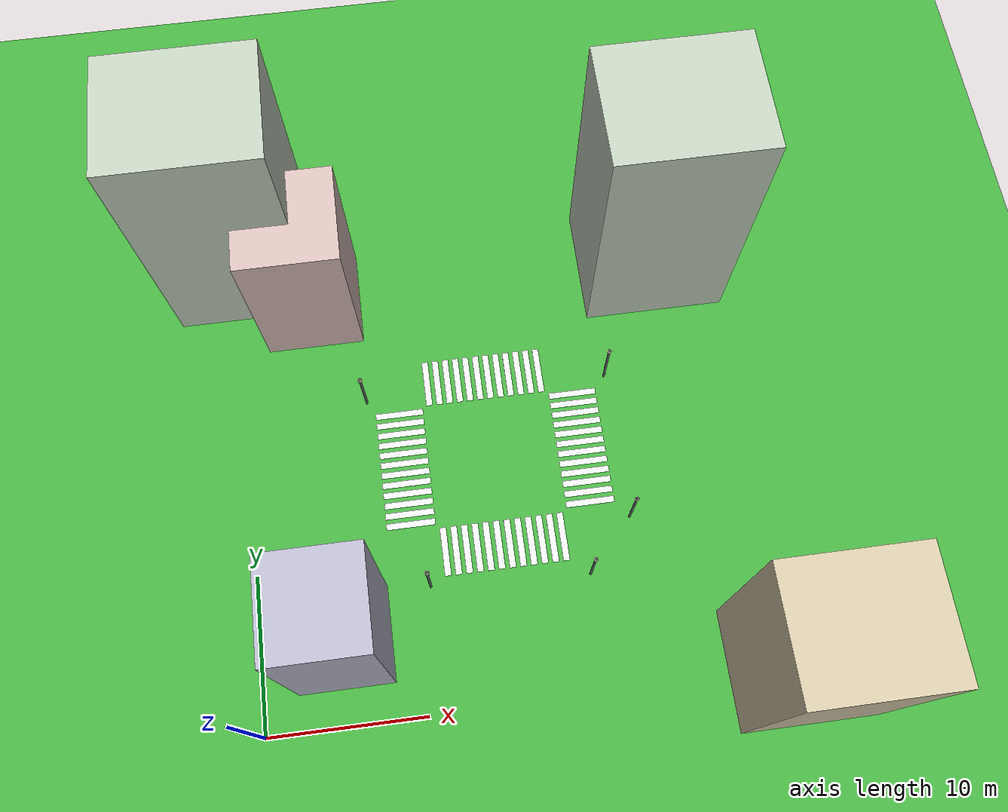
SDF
<sdf version="1.10">
 <world name="city_second">
  <model name="ground_plane">
   <static>true</static>
   <link name="link">
    <collision name="collision">
     <geometry><plane><normal>0 0 1</normal><size>300 300</size></plane></geometry>
    </collision>
    <visual name="visual">
     <geometry><plane><normal>0 0 1</normal><size>300 300</size></plane></geometry>
     <material>
      <ambient>0.280000001 0.689999998 0.25999999 1</ambient>
      <diffuse>0.280000001 0.689999998 0.25999999 1</diffuse>
      <specular>0.0299999993 0.0299999993 0.0299999993 1</specular>
     </material>
    </visual>
    <inertial>
     <mass>1</mass>
     <inertia><ixx>1</ixx><ixy>0</ixy><ixz>0</ixz><iyy>1</iyy><iyz>0</iyz><izz>1</izz></inertia>
    </inertial>
   </link>
  </model>
  <model name="house_2_2">
   <static>true</static>
   <pose>5.2000000000000002 5.2999999999999998 6.5 0 0 0</pose>
   <link name="link">
    <collision name="collision"><geometry><box><size>6 6 13</size></box></geometry></collision>
    <visual name="visual">
     <geometry><box><size>6 6 13</size></box></geometry>
     <material>
      <ambient>0.720000029 0.720000029 0.800000012 1</ambient>
      <diffuse>0.720000029 0.720000029 0.800000012 1</diffuse>
      <specular>0.0299999993 0.0299999993 0.0299999993 1</specular>
     </material>
    </visual>
    <inertial>
     <mass>1</mass>
     <inertia><ixx>1</ixx><ixy>0</ixy><ixz>0</ixz><iyy>1</iyy><iyz>0</iyz><izz>1</izz></inertia>
    </inertial>
   </link>
  </model>
  <model name="house_3_2">
   <static>true</static>
   <pose>4.8999999999999995 28.899999999999999 6 0 0 0</pose>
   <link name="link">
    <collision name="collision"><geometry><box><size>6.5 6.5 12</size></box></geometry></collision>
    <visual name="visual">
     <geometry><box><size>6.5 6.5 12</size></box></geometry>
     <material>
      <ambient>0.839999974 0.74000001 0.720000029 1</ambient>
      <diffuse>0.839999974 0.74000001 0.720000029 1</diffuse>
      <specular>0.0299999993 0.0299999993 0.0299999993 1</specular>
     </material>
    </visual>
    <inertial>
     <mass>1</mass>
     <inertia><ixx>1</ixx><ixy>0</ixy><ixz>0</ixz><iyy>1</iyy><iyz>0</iyz><izz>1</izz></inertia>
    </inertial>
   </link>
  </model>
  <model name="house_3_3">
   <static>true</static>
   <pose>28.600000000000001 29.399999999999999 9.5 0 0 0</pose>
   <link name="link">
    <collision name="collision"><geometry><box><size>9.5 8 19</size></box></geometry></collision>
    <visual name="visual">
     <geometry><box><size>9.5 8 19</size></box></geometry>
     <material>
      <ambient>0.75999999 0.810000002 0.74000001 1</ambient>
      <diffuse>0.75999999 0.810000002 0.74000001 1</diffuse>
      <specular>0.0299999993 0.0299999993 0.0299999993 1</specular>
     </material>
    </visual>
    <inertial>
     <mass>1</mass>
     <inertia><ixx>1</ixx><ixy>0</ixy><ixz>0</ixz><iyy>1</iyy><iyz>0</iyz><izz>1</izz></inertia>
    </inertial>
   </link>
  </model>
  <model name="crosswalk_h_1_1_south_5">
   <static>true</static>
   <pose>16.033462122134051 21.865937656898115 0.017000000923871994 0 0 0</pose>
   <link name="stripe_1">
    <collision name="collision">
     <geometry><box><size>0.41999999999999998 3.2000000000000002 0.01</size></box></geometry>
    </collision>
    <visual name="visual">
     <geometry><box><size>0.41999999999999998 3.2000000000000002 0.01</size></box></geometry>
     <material>
      <ambient>0.920000017 0.920000017 0.930000007 1</ambient>
      <diffuse>0.920000017 0.920000017 0.930000007 1</diffuse>
      <specular>0.0299999993 0.0299999993 0.0299999993 1</specular>
     </material>
    </visual>
    <pose>-3.8500000000000001 0 0 0 0 0</pose>
    <inertial>
     <mass>1</mass>
     <inertia><ixx>1</ixx><ixy>0</ixy><ixz>0</ixz><iyy>1</iyy><iyz>0</iyz><izz>1</izz></inertia>
    </inertial>
   </link>
   <link name="stripe_2">
    <collision name="collision">
     <geometry><box><size>0.41999999999999998 3.2000000000000002 0.01</size></box></geometry>
    </collision>
    <visual name="visual">
     <geometry><box><size>0.41999999999999998 3.2000000000000002 0.01</size></box></geometry>
     <material>
      <ambient>0.920000017 0.920000017 0.930000007 1</ambient>
      <diffuse>0.920000017 0.920000017 0.930000007 1</diffuse>
      <specular>0.0299999993 0.0299999993 0.0299999993 1</specular>
     </material>
    </visual>
    <pose>-3.1500000000000004 0 0 0 0 0</pose>
    <inertial>
     <mass>1</mass>
     <inertia><ixx>1</ixx><ixy>0</ixy><ixz>0</ixz><iyy>1</iyy><iyz>0</iyz><izz>1</izz></inertia>
    </inertial>
   </link>
   <link name="stripe_3">
    <collision name="collision">
     <geometry><box><size>0.41999999999999998 3.2000000000000002 0.01</size></box></geometry>
    </collision>
    <visual name="visual">
     <geometry><box><size>0.41999999999999998 3.2000000000000002 0.01</size></box></geometry>
     <material>
      <ambient>0.920000017 0.920000017 0.930000007 1</ambient>
      <diffuse>0.920000017 0.920000017 0.930000007 1</diffuse>
      <specular>0.0299999993 0.0299999993 0.0299999993 1</specular>
     </material>
    </visual>
    <pose>-2.4499999999999993 0 0 0 0 0</pose>
    <inertial>
     <mass>1</mass>
     <inertia><ixx>1</ixx><ixy>0</ixy><ixz>0</ixz><iyy>1</iyy><iyz>0</iyz><izz>1</izz></inertia>
    </inertial>
   </link>
   <link name="stripe_4">
    <collision name="collision">
     <geometry><box><size>0.41999999999999998 3.2000000000000002 0.01</size></box></geometry>
    </collision>
    <visual name="visual">
     <geometry><box><size>0.41999999999999998 3.2000000000000002 0.01</size></box></geometry>
     <material>
      <ambient>0.920000017 0.920000017 0.930000007 1</ambient>
      <diffuse>0.920000017 0.920000017 0.930000007 1</diffuse>
      <specular>0.0299999993 0.0299999993 0.0299999993 1</specular>
     </material>
    </visual>
    <pose>-1.75 0 0 0 0 0</pose>
    <inertial>
     <mass>1</mass>
     <inertia><ixx>1</ixx><ixy>0</ixy><ixz>0</ixz><iyy>1</iyy><iyz>0</iyz><izz>1</izz></inertia>
    </inertial>
   </link>
   <link name="stripe_5">
    <collision name="collision">
     <geometry><box><size>0.41999999999999998 3.2000000000000002 0.01</size></box></geometry>
    </collision>
    <visual name="visual">
     <geometry><box><size>0.41999999999999998 3.2000000000000002 0.01</size></box></geometry>
     <material>
      <ambient>0.920000017 0.920000017 0.930000007 1</ambient>
      <diffuse>0.920000017 0.920000017 0.930000007 1</diffuse>
      <specular>0.0299999993 0.0299999993 0.0299999993 1</specular>
     </material>
    </visual>
    <pose>-1.0500000000000007 0 0 0 0 0</pose>
    <inertial>
     <mass>1</mass>
     <inertia><ixx>1</ixx><ixy>0</ixy><ixz>0</ixz><iyy>1</iyy><iyz>0</iyz><izz>1</izz></inertia>
    </inertial>
   </link>
   <link name="stripe_6">
    <collision name="collision">
     <geometry><box><size>0.41999999999999998 3.2000000000000002 0.01</size></box></geometry>
    </collision>
    <visual name="visual">
     <geometry><box><size>0.41999999999999998 3.2000000000000002 0.01</size></box></geometry>
     <material>
      <ambient>0.920000017 0.920000017 0.930000007 1</ambient>
      <diffuse>0.920000017 0.920000017 0.930000007 1</diffuse>
      <specular>0.0299999993 0.0299999993 0.0299999993 1</specular>
     </material>
    </visual>
    <pose>-0.34999999999999964 0 0 0 0 0</pose>
    <inertial>
     <mass>1</mass>
     <inertia><ixx>1</ixx><ixy>0</ixy><ixz>0</ixz><iyy>1</iyy><iyz>0</iyz><izz>1</izz></inertia>
    </inertial>
   </link>
   <link name="stripe_7">
    <collision name="collision">
     <geometry><box><size>0.41999999999999998 3.2000000000000002 0.01</size></box></geometry>
    </collision>
    <visual name="visual">
     <geometry><box><size>0.41999999999999998 3.2000000000000002 0.01</size></box></geometry>
     <material>
      <ambient>0.920000017 0.920000017 0.930000007 1</ambient>
      <diffuse>0.920000017 0.920000017 0.930000007 1</diffuse>
      <specular>0.0299999993 0.0299999993 0.0299999993 1</specular>
     </material>
    </visual>
    <pose>0.35000000000000142 0 0 0 0 0</pose>
    <inertial>
     <mass>1</mass>
     <inertia><ixx>1</ixx><ixy>0</ixy><ixz>0</ixz><iyy>1</iyy><iyz>0</iyz><izz>1</izz></inertia>
    </inertial>
   </link>
   <link name="stripe_8">
    <collision name="collision">
     <geometry><box><size>0.41999999999999998 3.2000000000000002 0.01</size></box></geometry>
    </collision>
    <visual name="visual">
     <geometry><box><size>0.41999999999999998 3.2000000000000002 0.01</size></box></geometry>
     <material>
      <ambient>0.920000017 0.920000017 0.930000007 1</ambient>
      <diffuse>0.920000017 0.920000017 0.930000007 1</diffuse>
      <specular>0.0299999993 0.0299999993 0.0299999993 1</specular>
     </material>
    </visual>
    <pose>1.0500000000000007 0 0 0 0 0</pose>
    <inertial>
     <mass>1</mass>
     <inertia><ixx>1</ixx><ixy>0</ixy><ixz>0</ixz><iyy>1</iyy><iyz>0</iyz><izz>1</izz></inertia>
    </inertial>
   </link>
   <link name="stripe_9">
    <collision name="collision">
     <geometry><box><size>0.41999999999999998 3.2000000000000002 0.01</size></box></geometry>
    </collision>
    <visual name="visual">
     <geometry><box><size>0.41999999999999998 3.2000000000000002 0.01</size></box></geometry>
     <material>
      <ambient>0.920000017 0.920000017 0.930000007 1</ambient>
      <diffuse>0.920000017 0.920000017 0.930000007 1</diffuse>
      <specular>0.0299999993 0.0299999993 0.0299999993 1</specular>
     </material>
    </visual>
    <pose>1.75 0 0 0 0 0</pose>
    <inertial>
     <mass>1</mass>
     <inertia><ixx>1</ixx><ixy>0</ixy><ixz>0</ixz><iyy>1</iyy><iyz>0</iyz><izz>1</izz></inertia>
    </inertial>
   </link>
   <link name="stripe_10">
    <collision name="collision">
     <geometry><box><size>0.41999999999999998 3.2000000000000002 0.01</size></box></geometry>
    </collision>
    <visual name="visual">
     <geometry><box><size>0.41999999999999998 3.2000000000000002 0.01</size></box></geometry>
     <material>
      <ambient>0.920000017 0.920000017 0.930000007 1</ambient>
      <diffuse>0.920000017 0.920000017 0.930000007 1</diffuse>
      <specular>0.0299999993 0.0299999993 0.0299999993 1</specular>
     </material>
    </visual>
    <pose>2.4499999999999993 0 0 0 0 0</pose>
    <inertial>
     <mass>1</mass>
     <inertia><ixx>1</ixx><ixy>0</ixy><ixz>0</ixz><iyy>1</iyy><iyz>0</iyz><izz>1</izz></inertia>
    </inertial>
   </link>
   <link name="stripe_11">
    <collision name="collision">
     <geometry><box><size>0.41999999999999998 3.2000000000000002 0.01</size></box></geometry>
    </collision>
    <visual name="visual">
     <geometry><box><size>0.41999999999999998 3.2000000000000002 0.01</size></box></geometry>
     <material>
      <ambient>0.920000017 0.920000017 0.930000007 1</ambient>
      <diffuse>0.920000017 0.920000017 0.930000007 1</diffuse>
      <specular>0.0299999993 0.0299999993 0.0299999993 1</specular>
     </material>
    </visual>
    <pose>3.1499999999999986 0 0 0 0 0</pose>
    <inertial>
     <mass>1</mass>
     <inertia><ixx>1</ixx><ixy>0</ixy><ixz>0</ixz><iyy>1</iyy><iyz>0</iyz><izz>1</izz></inertia>
    </inertial>
   </link>
   <link name="stripe_12">
    <collision name="collision">
     <geometry><box><size>0.41999999999999998 3.2000000000000002 0.01</size></box></geometry>
    </collision>
    <visual name="visual">
     <geometry><box><size>0.41999999999999998 3.2000000000000002 0.01</size></box></geometry>
     <material>
      <ambient>0.920000017 0.920000017 0.930000007 1</ambient>
      <diffuse>0.920000017 0.920000017 0.930000007 1</diffuse>
      <specular>0.0299999993 0.0299999993 0.0299999993 1</specular>
     </material>
    </visual>
    <pose>3.8500000000000014 0 0 0 0 0</pose>
    <inertial>
     <mass>1</mass>
     <inertia><ixx>1</ixx><ixy>0</ixy><ixz>0</ixz><iyy>1</iyy><iyz>0</iyz><izz>1</izz></inertia>
    </inertial>
   </link>
  </model>
  <model name="crosswalk_h_1_1_south_6">
   <static>true</static>
   <pose>15.980713777312754 10.092161600737073 0.017000000923871994 0 0 0</pose>
   <link name="stripe_1">
    <collision name="collision">
     <geometry><box><size>0.41999999999999998 3.2000000000000002 0.01</size></box></geometry>
    </collision>
    <visual name="visual">
     <geometry><box><size>0.41999999999999998 3.2000000000000002 0.01</size></box></geometry>
     <material>
      <ambient>0.920000017 0.920000017 0.930000007 1</ambient>
      <diffuse>0.920000017 0.920000017 0.930000007 1</diffuse>
      <specular>0.0299999993 0.0299999993 0.0299999993 1</specular>
     </material>
    </visual>
    <pose>-3.8500000000000001 0 0 0 0 0</pose>
    <inertial>
     <mass>1</mass>
     <inertia><ixx>1</ixx><ixy>0</ixy><ixz>0</ixz><iyy>1</iyy><iyz>0</iyz><izz>1</izz></inertia>
    </inertial>
   </link>
   <link name="stripe_2">
    <collision name="collision">
     <geometry><box><size>0.41999999999999998 3.2000000000000002 0.01</size></box></geometry>
    </collision>
    <visual name="visual">
     <geometry><box><size>0.41999999999999998 3.2000000000000002 0.01</size></box></geometry>
     <material>
      <ambient>0.920000017 0.920000017 0.930000007 1</ambient>
      <diffuse>0.920000017 0.920000017 0.930000007 1</diffuse>
      <specular>0.0299999993 0.0299999993 0.0299999993 1</specular>
     </material>
    </visual>
    <pose>-3.1500000000000004 0 0 0 0 0</pose>
    <inertial>
     <mass>1</mass>
     <inertia><ixx>1</ixx><ixy>0</ixy><ixz>0</ixz><iyy>1</iyy><iyz>0</iyz><izz>1</izz></inertia>
    </inertial>
   </link>
   <link name="stripe_3">
    <collision name="collision">
     <geometry><box><size>0.41999999999999998 3.2000000000000002 0.01</size></box></geometry>
    </collision>
    <visual name="visual">
     <geometry><box><size>0.41999999999999998 3.2000000000000002 0.01</size></box></geometry>
     <material>
      <ambient>0.920000017 0.920000017 0.930000007 1</ambient>
      <diffuse>0.920000017 0.920000017 0.930000007 1</diffuse>
      <specular>0.0299999993 0.0299999993 0.0299999993 1</specular>
     </material>
    </visual>
    <pose>-2.4499999999999993 0 0 0 0 0</pose>
    <inertial>
     <mass>1</mass>
     <inertia><ixx>1</ixx><ixy>0</ixy><ixz>0</ixz><iyy>1</iyy><iyz>0</iyz><izz>1</izz></inertia>
    </inertial>
   </link>
   <link name="stripe_4">
    <collision name="collision">
     <geometry><box><size>0.41999999999999998 3.2000000000000002 0.01</size></box></geometry>
    </collision>
    <visual name="visual">
     <geometry><box><size>0.41999999999999998 3.2000000000000002 0.01</size></box></geometry>
     <material>
      <ambient>0.920000017 0.920000017 0.930000007 1</ambient>
      <diffuse>0.920000017 0.920000017 0.930000007 1</diffuse>
      <specular>0.0299999993 0.0299999993 0.0299999993 1</specular>
     </material>
    </visual>
    <pose>-1.75 0 0 0 0 0</pose>
    <inertial>
     <mass>1</mass>
     <inertia><ixx>1</ixx><ixy>0</ixy><ixz>0</ixz><iyy>1</iyy><iyz>0</iyz><izz>1</izz></inertia>
    </inertial>
   </link>
   <link name="stripe_5">
    <collision name="collision">
     <geometry><box><size>0.41999999999999998 3.2000000000000002 0.01</size></box></geometry>
    </collision>
    <visual name="visual">
     <geometry><box><size>0.41999999999999998 3.2000000000000002 0.01</size></box></geometry>
     <material>
      <ambient>0.920000017 0.920000017 0.930000007 1</ambient>
      <diffuse>0.920000017 0.920000017 0.930000007 1</diffuse>
      <specular>0.0299999993 0.0299999993 0.0299999993 1</specular>
     </material>
    </visual>
    <pose>-1.0500000000000007 0 0 0 0 0</pose>
    <inertial>
     <mass>1</mass>
     <inertia><ixx>1</ixx><ixy>0</ixy><ixz>0</ixz><iyy>1</iyy><iyz>0</iyz><izz>1</izz></inertia>
    </inertial>
   </link>
   <link name="stripe_6">
    <collision name="collision">
     <geometry><box><size>0.41999999999999998 3.2000000000000002 0.01</size></box></geometry>
    </collision>
    <visual name="visual">
     <geometry><box><size>0.41999999999999998 3.2000000000000002 0.01</size></box></geometry>
     <material>
      <ambient>0.920000017 0.920000017 0.930000007 1</ambient>
      <diffuse>0.920000017 0.920000017 0.930000007 1</diffuse>
      <specular>0.0299999993 0.0299999993 0.0299999993 1</specular>
     </material>
    </visual>
    <pose>-0.34999999999999964 0 0 0 0 0</pose>
    <inertial>
     <mass>1</mass>
     <inertia><ixx>1</ixx><ixy>0</ixy><ixz>0</ixz><iyy>1</iyy><iyz>0</iyz><izz>1</izz></inertia>
    </inertial>
   </link>
   <link name="stripe_7">
    <collision name="collision">
     <geometry><box><size>0.41999999999999998 3.2000000000000002 0.01</size></box></geometry>
    </collision>
    <visual name="visual">
     <geometry><box><size>0.41999999999999998 3.2000000000000002 0.01</size></box></geometry>
     <material>
      <ambient>0.920000017 0.920000017 0.930000007 1</ambient>
      <diffuse>0.920000017 0.920000017 0.930000007 1</diffuse>
      <specular>0.0299999993 0.0299999993 0.0299999993 1</specular>
     </material>
    </visual>
    <pose>0.35000000000000142 0 0 0 0 0</pose>
    <inertial>
     <mass>1</mass>
     <inertia><ixx>1</ixx><ixy>0</ixy><ixz>0</ixz><iyy>1</iyy><iyz>0</iyz><izz>1</izz></inertia>
    </inertial>
   </link>
   <link name="stripe_8">
    <collision name="collision">
     <geometry><box><size>0.41999999999999998 3.2000000000000002 0.01</size></box></geometry>
    </collision>
    <visual name="visual">
     <geometry><box><size>0.41999999999999998 3.2000000000000002 0.01</size></box></geometry>
     <material>
      <ambient>0.920000017 0.920000017 0.930000007 1</ambient>
      <diffuse>0.920000017 0.920000017 0.930000007 1</diffuse>
      <specular>0.0299999993 0.0299999993 0.0299999993 1</specular>
     </material>
    </visual>
    <pose>1.0500000000000007 0 0 0 0 0</pose>
    <inertial>
     <mass>1</mass>
     <inertia><ixx>1</ixx><ixy>0</ixy><ixz>0</ixz><iyy>1</iyy><iyz>0</iyz><izz>1</izz></inertia>
    </inertial>
   </link>
   <link name="stripe_9">
    <collision name="collision">
     <geometry><box><size>0.41999999999999998 3.2000000000000002 0.01</size></box></geometry>
    </collision>
    <visual name="visual">
     <geometry><box><size>0.41999999999999998 3.2000000000000002 0.01</size></box></geometry>
     <material>
      <ambient>0.920000017 0.920000017 0.930000007 1</ambient>
      <diffuse>0.920000017 0.920000017 0.930000007 1</diffuse>
      <specular>0.0299999993 0.0299999993 0.0299999993 1</specular>
     </material>
    </visual>
    <pose>1.75 0 0 0 0 0</pose>
    <inertial>
     <mass>1</mass>
     <inertia><ixx>1</ixx><ixy>0</ixy><ixz>0</ixz><iyy>1</iyy><iyz>0</iyz><izz>1</izz></inertia>
    </inertial>
   </link>
   <link name="stripe_10">
    <collision name="collision">
     <geometry><box><size>0.41999999999999998 3.2000000000000002 0.01</size></box></geometry>
    </collision>
    <visual name="visual">
     <geometry><box><size>0.41999999999999998 3.2000000000000002 0.01</size></box></geometry>
     <material>
      <ambient>0.920000017 0.920000017 0.930000007 1</ambient>
      <diffuse>0.920000017 0.920000017 0.930000007 1</diffuse>
      <specular>0.0299999993 0.0299999993 0.0299999993 1</specular>
     </material>
    </visual>
    <pose>2.4499999999999993 0 0 0 0 0</pose>
    <inertial>
     <mass>1</mass>
     <inertia><ixx>1</ixx><ixy>0</ixy><ixz>0</ixz><iyy>1</iyy><iyz>0</iyz><izz>1</izz></inertia>
    </inertial>
   </link>
   <link name="stripe_11">
    <collision name="collision">
     <geometry><box><size>0.41999999999999998 3.2000000000000002 0.01</size></box></geometry>
    </collision>
    <visual name="visual">
     <geometry><box><size>0.41999999999999998 3.2000000000000002 0.01</size></box></geometry>
     <material>
      <ambient>0.920000017 0.920000017 0.930000007 1</ambient>
      <diffuse>0.920000017 0.920000017 0.930000007 1</diffuse>
      <specular>0.0299999993 0.0299999993 0.0299999993 1</specular>
     </material>
    </visual>
    <pose>3.1499999999999986 0 0 0 0 0</pose>
    <inertial>
     <mass>1</mass>
     <inertia><ixx>1</ixx><ixy>0</ixy><ixz>0</ixz><iyy>1</iyy><iyz>0</iyz><izz>1</izz></inertia>
    </inertial>
   </link>
   <link name="stripe_12">
    <collision name="collision">
     <geometry><box><size>0.41999999999999998 3.2000000000000002 0.01</size></box></geometry>
    </collision>
    <visual name="visual">
     <geometry><box><size>0.41999999999999998 3.2000000000000002 0.01</size></box></geometry>
     <material>
      <ambient>0.920000017 0.920000017 0.930000007 1</ambient>
      <diffuse>0.920000017 0.920000017 0.930000007 1</diffuse>
      <specular>0.0299999993 0.0299999993 0.0299999993 1</specular>
     </material>
    </visual>
    <pose>3.8500000000000014 0 0 0 0 0</pose>
    <inertial>
     <mass>1</mass>
     <inertia><ixx>1</ixx><ixy>0</ixy><ixz>0</ixz><iyy>1</iyy><iyz>0</iyz><izz>1</izz></inertia>
    </inertial>
   </link>
  </model>
  <model name="crosswalk_v_2_1_east_6">
   <static>true</static>
   <pose>10.091694509516831 16.024816834297141 0.017000000923871994 0 0 0</pose>
   <link name="stripe_1">
    <collision name="collision">
     <geometry><box><size>3.2000000000000002 0.41999999999999998 0.01</size></box></geometry>
    </collision>
    <visual name="visual">
     <geometry><box><size>3.2000000000000002 0.41999999999999998 0.01</size></box></geometry>
     <material>
      <ambient>0.920000017 0.920000017 0.930000007 1</ambient>
      <diffuse>0.920000017 0.920000017 0.930000007 1</diffuse>
      <specular>0.0299999993 0.0299999993 0.0299999993 1</specular>
     </material>
    </visual>
    <pose>0 -3.8500000000000001 0 0 0 0</pose>
    <inertial>
     <mass>1</mass>
     <inertia><ixx>1</ixx><ixy>0</ixy><ixz>0</ixz><iyy>1</iyy><iyz>0</iyz><izz>1</izz></inertia>
    </inertial>
   </link>
   <link name="stripe_2">
    <collision name="collision">
     <geometry><box><size>3.2000000000000002 0.41999999999999998 0.01</size></box></geometry>
    </collision>
    <visual name="visual">
     <geometry><box><size>3.2000000000000002 0.41999999999999998 0.01</size></box></geometry>
     <material>
      <ambient>0.920000017 0.920000017 0.930000007 1</ambient>
      <diffuse>0.920000017 0.920000017 0.930000007 1</diffuse>
      <specular>0.0299999993 0.0299999993 0.0299999993 1</specular>
     </material>
    </visual>
    <pose>0 -3.1500000000000004 0 0 0 0</pose>
    <inertial>
     <mass>1</mass>
     <inertia><ixx>1</ixx><ixy>0</ixy><ixz>0</ixz><iyy>1</iyy><iyz>0</iyz><izz>1</izz></inertia>
    </inertial>
   </link>
   <link name="stripe_3">
    <collision name="collision">
     <geometry><box><size>3.2000000000000002 0.41999999999999998 0.01</size></box></geometry>
    </collision>
    <visual name="visual">
     <geometry><box><size>3.2000000000000002 0.41999999999999998 0.01</size></box></geometry>
     <material>
      <ambient>0.920000017 0.920000017 0.930000007 1</ambient>
      <diffuse>0.920000017 0.920000017 0.930000007 1</diffuse>
      <specular>0.0299999993 0.0299999993 0.0299999993 1</specular>
     </material>
    </visual>
    <pose>0 -2.4499999999999993 0 0 0 0</pose>
    <inertial>
     <mass>1</mass>
     <inertia><ixx>1</ixx><ixy>0</ixy><ixz>0</ixz><iyy>1</iyy><iyz>0</iyz><izz>1</izz></inertia>
    </inertial>
   </link>
   <link name="stripe_4">
    <collision name="collision">
     <geometry><box><size>3.2000000000000002 0.41999999999999998 0.01</size></box></geometry>
    </collision>
    <visual name="visual">
     <geometry><box><size>3.2000000000000002 0.41999999999999998 0.01</size></box></geometry>
     <material>
      <ambient>0.920000017 0.920000017 0.930000007 1</ambient>
      <diffuse>0.920000017 0.920000017 0.930000007 1</diffuse>
      <specular>0.0299999993 0.0299999993 0.0299999993 1</specular>
     </material>
    </visual>
    <pose>0 -1.75 0 0 0 0</pose>
    <inertial>
     <mass>1</mass>
     <inertia><ixx>1</ixx><ixy>0</ixy><ixz>0</ixz><iyy>1</iyy><iyz>0</iyz><izz>1</izz></inertia>
    </inertial>
   </link>
   <link name="stripe_5">
    <collision name="collision">
     <geometry><box><size>3.2000000000000002 0.41999999999999998 0.01</size></box></geometry>
    </collision>
    <visual name="visual">
     <geometry><box><size>3.2000000000000002 0.41999999999999998 0.01</size></box></geometry>
     <material>
      <ambient>0.920000017 0.920000017 0.930000007 1</ambient>
      <diffuse>0.920000017 0.920000017 0.930000007 1</diffuse>
      <specular>0.0299999993 0.0299999993 0.0299999993 1</specular>
     </material>
    </visual>
    <pose>0 -1.0500000000000007 0 0 0 0</pose>
    <inertial>
     <mass>1</mass>
     <inertia><ixx>1</ixx><ixy>0</ixy><ixz>0</ixz><iyy>1</iyy><iyz>0</iyz><izz>1</izz></inertia>
    </inertial>
   </link>
   <link name="stripe_6">
    <collision name="collision">
     <geometry><box><size>3.2000000000000002 0.41999999999999998 0.01</size></box></geometry>
    </collision>
    <visual name="visual">
     <geometry><box><size>3.2000000000000002 0.41999999999999998 0.01</size></box></geometry>
     <material>
      <ambient>0.920000017 0.920000017 0.930000007 1</ambient>
      <diffuse>0.920000017 0.920000017 0.930000007 1</diffuse>
      <specular>0.0299999993 0.0299999993 0.0299999993 1</specular>
     </material>
    </visual>
    <pose>0 -0.34999999999999964 0 0 0 0</pose>
    <inertial>
     <mass>1</mass>
     <inertia><ixx>1</ixx><ixy>0</ixy><ixz>0</ixz><iyy>1</iyy><iyz>0</iyz><izz>1</izz></inertia>
    </inertial>
   </link>
   <link name="stripe_7">
    <collision name="collision">
     <geometry><box><size>3.2000000000000002 0.41999999999999998 0.01</size></box></geometry>
    </collision>
    <visual name="visual">
     <geometry><box><size>3.2000000000000002 0.41999999999999998 0.01</size></box></geometry>
     <material>
      <ambient>0.920000017 0.920000017 0.930000007 1</ambient>
      <diffuse>0.920000017 0.920000017 0.930000007 1</diffuse>
      <specular>0.0299999993 0.0299999993 0.0299999993 1</specular>
     </material>
    </visual>
    <pose>0 0.35000000000000142 0 0 0 0</pose>
    <inertial>
     <mass>1</mass>
     <inertia><ixx>1</ixx><ixy>0</ixy><ixz>0</ixz><iyy>1</iyy><iyz>0</iyz><izz>1</izz></inertia>
    </inertial>
   </link>
   <link name="stripe_8">
    <collision name="collision">
     <geometry><box><size>3.2000000000000002 0.41999999999999998 0.01</size></box></geometry>
    </collision>
    <visual name="visual">
     <geometry><box><size>3.2000000000000002 0.41999999999999998 0.01</size></box></geometry>
     <material>
      <ambient>0.920000017 0.920000017 0.930000007 1</ambient>
      <diffuse>0.920000017 0.920000017 0.930000007 1</diffuse>
      <specular>0.0299999993 0.0299999993 0.0299999993 1</specular>
     </material>
    </visual>
    <pose>0 1.0500000000000007 0 0 0 0</pose>
    <inertial>
     <mass>1</mass>
     <inertia><ixx>1</ixx><ixy>0</ixy><ixz>0</ixz><iyy>1</iyy><iyz>0</iyz><izz>1</izz></inertia>
    </inertial>
   </link>
   <link name="stripe_9">
    <collision name="collision">
     <geometry><box><size>3.2000000000000002 0.41999999999999998 0.01</size></box></geometry>
    </collision>
    <visual name="visual">
     <geometry><box><size>3.2000000000000002 0.41999999999999998 0.01</size></box></geometry>
     <material>
      <ambient>0.920000017 0.920000017 0.930000007 1</ambient>
      <diffuse>0.920000017 0.920000017 0.930000007 1</diffuse>
      <specular>0.0299999993 0.0299999993 0.0299999993 1</specular>
     </material>
    </visual>
    <pose>0 1.75 0 0 0 0</pose>
    <inertial>
     <mass>1</mass>
     <inertia><ixx>1</ixx><ixy>0</ixy><ixz>0</ixz><iyy>1</iyy><iyz>0</iyz><izz>1</izz></inertia>
    </inertial>
   </link>
   <link name="stripe_10">
    <collision name="collision">
     <geometry><box><size>3.2000000000000002 0.41999999999999998 0.01</size></box></geometry>
    </collision>
    <visual name="visual">
     <geometry><box><size>3.2000000000000002 0.41999999999999998 0.01</size></box></geometry>
     <material>
      <ambient>0.920000017 0.920000017 0.930000007 1</ambient>
      <diffuse>0.920000017 0.920000017 0.930000007 1</diffuse>
      <specular>0.0299999993 0.0299999993 0.0299999993 1</specular>
     </material>
    </visual>
    <pose>0 2.4499999999999993 0 0 0 0</pose>
    <inertial>
     <mass>1</mass>
     <inertia><ixx>1</ixx><ixy>0</ixy><ixz>0</ixz><iyy>1</iyy><iyz>0</iyz><izz>1</izz></inertia>
    </inertial>
   </link>
   <link name="stripe_11">
    <collision name="collision">
     <geometry><box><size>3.2000000000000002 0.41999999999999998 0.01</size></box></geometry>
    </collision>
    <visual name="visual">
     <geometry><box><size>3.2000000000000002 0.41999999999999998 0.01</size></box></geometry>
     <material>
      <ambient>0.920000017 0.920000017 0.930000007 1</ambient>
      <diffuse>0.920000017 0.920000017 0.930000007 1</diffuse>
      <specular>0.0299999993 0.0299999993 0.0299999993 1</specular>
     </material>
    </visual>
    <pose>0 3.1499999999999986 0 0 0 0</pose>
    <inertial>
     <mass>1</mass>
     <inertia><ixx>1</ixx><ixy>0</ixy><ixz>0</ixz><iyy>1</iyy><iyz>0</iyz><izz>1</izz></inertia>
    </inertial>
   </link>
   <link name="stripe_12">
    <collision name="collision">
     <geometry><box><size>3.2000000000000002 0.41999999999999998 0.01</size></box></geometry>
    </collision>
    <visual name="visual">
     <geometry><box><size>3.2000000000000002 0.41999999999999998 0.01</size></box></geometry>
     <material>
      <ambient>0.920000017 0.920000017 0.930000007 1</ambient>
      <diffuse>0.920000017 0.920000017 0.930000007 1</diffuse>
      <specular>0.0299999993 0.0299999993 0.0299999993 1</specular>
     </material>
    </visual>
    <pose>0 3.8500000000000014 0 0 0 0</pose>
    <inertial>
     <mass>1</mass>
     <inertia><ixx>1</ixx><ixy>0</ixy><ixz>0</ixz><iyy>1</iyy><iyz>0</iyz><izz>1</izz></inertia>
    </inertial>
   </link>
  </model>
  <model name="crosswalk_v_2_1_east_7">
   <static>true</static>
   <pose>21.941864420511155 16.021662532417597 0.017000000923871994 0 0 0</pose>
   <link name="stripe_1">
    <collision name="collision">
     <geometry><box><size>3.2000000000000002 0.41999999999999998 0.01</size></box></geometry>
    </collision>
    <visual name="visual">
     <geometry><box><size>3.2000000000000002 0.41999999999999998 0.01</size></box></geometry>
     <material>
      <ambient>0.920000017 0.920000017 0.930000007 1</ambient>
      <diffuse>0.920000017 0.920000017 0.930000007 1</diffuse>
      <specular>0.0299999993 0.0299999993 0.0299999993 1</specular>
     </material>
    </visual>
    <pose>0 -3.8500000000000001 0 0 0 0</pose>
    <inertial>
     <mass>1</mass>
     <inertia><ixx>1</ixx><ixy>0</ixy><ixz>0</ixz><iyy>1</iyy><iyz>0</iyz><izz>1</izz></inertia>
    </inertial>
   </link>
   <link name="stripe_2">
    <collision name="collision">
     <geometry><box><size>3.2000000000000002 0.41999999999999998 0.01</size></box></geometry>
    </collision>
    <visual name="visual">
     <geometry><box><size>3.2000000000000002 0.41999999999999998 0.01</size></box></geometry>
     <material>
      <ambient>0.920000017 0.920000017 0.930000007 1</ambient>
      <diffuse>0.920000017 0.920000017 0.930000007 1</diffuse>
      <specular>0.0299999993 0.0299999993 0.0299999993 1</specular>
     </material>
    </visual>
    <pose>0 -3.1500000000000004 0 0 0 0</pose>
    <inertial>
     <mass>1</mass>
     <inertia><ixx>1</ixx><ixy>0</ixy><ixz>0</ixz><iyy>1</iyy><iyz>0</iyz><izz>1</izz></inertia>
    </inertial>
   </link>
   <link name="stripe_3">
    <collision name="collision">
     <geometry><box><size>3.2000000000000002 0.41999999999999998 0.01</size></box></geometry>
    </collision>
    <visual name="visual">
     <geometry><box><size>3.2000000000000002 0.41999999999999998 0.01</size></box></geometry>
     <material>
      <ambient>0.920000017 0.920000017 0.930000007 1</ambient>
      <diffuse>0.920000017 0.920000017 0.930000007 1</diffuse>
      <specular>0.0299999993 0.0299999993 0.0299999993 1</specular>
     </material>
    </visual>
    <pose>0 -2.4499999999999993 0 0 0 0</pose>
    <inertial>
     <mass>1</mass>
     <inertia><ixx>1</ixx><ixy>0</ixy><ixz>0</ixz><iyy>1</iyy><iyz>0</iyz><izz>1</izz></inertia>
    </inertial>
   </link>
   <link name="stripe_4">
    <collision name="collision">
     <geometry><box><size>3.2000000000000002 0.41999999999999998 0.01</size></box></geometry>
    </collision>
    <visual name="visual">
     <geometry><box><size>3.2000000000000002 0.41999999999999998 0.01</size></box></geometry>
     <material>
      <ambient>0.920000017 0.920000017 0.930000007 1</ambient>
      <diffuse>0.920000017 0.920000017 0.930000007 1</diffuse>
      <specular>0.0299999993 0.0299999993 0.0299999993 1</specular>
     </material>
    </visual>
    <pose>0 -1.75 0 0 0 0</pose>
    <inertial>
     <mass>1</mass>
     <inertia><ixx>1</ixx><ixy>0</ixy><ixz>0</ixz><iyy>1</iyy><iyz>0</iyz><izz>1</izz></inertia>
    </inertial>
   </link>
   <link name="stripe_5">
    <collision name="collision">
     <geometry><box><size>3.2000000000000002 0.41999999999999998 0.01</size></box></geometry>
    </collision>
    <visual name="visual">
     <geometry><box><size>3.2000000000000002 0.41999999999999998 0.01</size></box></geometry>
     <material>
      <ambient>0.920000017 0.920000017 0.930000007 1</ambient>
      <diffuse>0.920000017 0.920000017 0.930000007 1</diffuse>
      <specular>0.0299999993 0.0299999993 0.0299999993 1</specular>
     </material>
    </visual>
    <pose>0 -1.0500000000000007 0 0 0 0</pose>
    <inertial>
     <mass>1</mass>
     <inertia><ixx>1</ixx><ixy>0</ixy><ixz>0</ixz><iyy>1</iyy><iyz>0</iyz><izz>1</izz></inertia>
    </inertial>
   </link>
   <link name="stripe_6">
    <collision name="collision">
     <geometry><box><size>3.2000000000000002 0.41999999999999998 0.01</size></box></geometry>
    </collision>
    <visual name="visual">
     <geometry><box><size>3.2000000000000002 0.41999999999999998 0.01</size></box></geometry>
     <material>
      <ambient>0.920000017 0.920000017 0.930000007 1</ambient>
      <diffuse>0.920000017 0.920000017 0.930000007 1</diffuse>
      <specular>0.0299999993 0.0299999993 0.0299999993 1</specular>
     </material>
    </visual>
    <pose>0 -0.34999999999999964 0 0 0 0</pose>
    <inertial>
     <mass>1</mass>
     <inertia><ixx>1</ixx><ixy>0</ixy><ixz>0</ixz><iyy>1</iyy><iyz>0</iyz><izz>1</izz></inertia>
    </inertial>
   </link>
   <link name="stripe_7">
    <collision name="collision">
     <geometry><box><size>3.2000000000000002 0.41999999999999998 0.01</size></box></geometry>
    </collision>
    <visual name="visual">
     <geometry><box><size>3.2000000000000002 0.41999999999999998 0.01</size></box></geometry>
     <material>
      <ambient>0.920000017 0.920000017 0.930000007 1</ambient>
      <diffuse>0.920000017 0.920000017 0.930000007 1</diffuse>
      <specular>0.0299999993 0.0299999993 0.0299999993 1</specular>
     </material>
    </visual>
    <pose>0 0.35000000000000142 0 0 0 0</pose>
    <inertial>
     <mass>1</mass>
     <inertia><ixx>1</ixx><ixy>0</ixy><ixz>0</ixz><iyy>1</iyy><iyz>0</iyz><izz>1</izz></inertia>
    </inertial>
   </link>
   <link name="stripe_8">
    <collision name="collision">
     <geometry><box><size>3.2000000000000002 0.41999999999999998 0.01</size></box></geometry>
    </collision>
    <visual name="visual">
     <geometry><box><size>3.2000000000000002 0.41999999999999998 0.01</size></box></geometry>
     <material>
      <ambient>0.920000017 0.920000017 0.930000007 1</ambient>
      <diffuse>0.920000017 0.920000017 0.930000007 1</diffuse>
      <specular>0.0299999993 0.0299999993 0.0299999993 1</specular>
     </material>
    </visual>
    <pose>0 1.0500000000000007 0 0 0 0</pose>
    <inertial>
     <mass>1</mass>
     <inertia><ixx>1</ixx><ixy>0</ixy><ixz>0</ixz><iyy>1</iyy><iyz>0</iyz><izz>1</izz></inertia>
    </inertial>
   </link>
   <link name="stripe_9">
    <collision name="collision">
     <geometry><box><size>3.2000000000000002 0.41999999999999998 0.01</size></box></geometry>
    </collision>
    <visual name="visual">
     <geometry><box><size>3.2000000000000002 0.41999999999999998 0.01</size></box></geometry>
     <material>
      <ambient>0.920000017 0.920000017 0.930000007 1</ambient>
      <diffuse>0.920000017 0.920000017 0.930000007 1</diffuse>
      <specular>0.0299999993 0.0299999993 0.0299999993 1</specular>
     </material>
    </visual>
    <pose>0 1.75 0 0 0 0</pose>
    <inertial>
     <mass>1</mass>
     <inertia><ixx>1</ixx><ixy>0</ixy><ixz>0</ixz><iyy>1</iyy><iyz>0</iyz><izz>1</izz></inertia>
    </inertial>
   </link>
   <link name="stripe_10">
    <collision name="collision">
     <geometry><box><size>3.2000000000000002 0.41999999999999998 0.01</size></box></geometry>
    </collision>
    <visual name="visual">
     <geometry><box><size>3.2000000000000002 0.41999999999999998 0.01</size></box></geometry>
     <material>
      <ambient>0.920000017 0.920000017 0.930000007 1</ambient>
      <diffuse>0.920000017 0.920000017 0.930000007 1</diffuse>
      <specular>0.0299999993 0.0299999993 0.0299999993 1</specular>
     </material>
    </visual>
    <pose>0 2.4499999999999993 0 0 0 0</pose>
    <inertial>
     <mass>1</mass>
     <inertia><ixx>1</ixx><ixy>0</ixy><ixz>0</ixz><iyy>1</iyy><iyz>0</iyz><izz>1</izz></inertia>
    </inertial>
   </link>
   <link name="stripe_11">
    <collision name="collision">
     <geometry><box><size>3.2000000000000002 0.41999999999999998 0.01</size></box></geometry>
    </collision>
    <visual name="visual">
     <geometry><box><size>3.2000000000000002 0.41999999999999998 0.01</size></box></geometry>
     <material>
      <ambient>0.920000017 0.920000017 0.930000007 1</ambient>
      <diffuse>0.920000017 0.920000017 0.930000007 1</diffuse>
      <specular>0.0299999993 0.0299999993 0.0299999993 1</specular>
     </material>
    </visual>
    <pose>0 3.1499999999999986 0 0 0 0</pose>
    <inertial>
     <mass>1</mass>
     <inertia><ixx>1</ixx><ixy>0</ixy><ixz>0</ixz><iyy>1</iyy><iyz>0</iyz><izz>1</izz></inertia>
    </inertial>
   </link>
   <link name="stripe_12">
    <collision name="collision">
     <geometry><box><size>3.2000000000000002 0.41999999999999998 0.01</size></box></geometry>
    </collision>
    <visual name="visual">
     <geometry><box><size>3.2000000000000002 0.41999999999999998 0.01</size></box></geometry>
     <material>
      <ambient>0.920000017 0.920000017 0.930000007 1</ambient>
      <diffuse>0.920000017 0.920000017 0.930000007 1</diffuse>
      <specular>0.0299999993 0.0299999993 0.0299999993 1</specular>
     </material>
    </visual>
    <pose>0 3.8500000000000014 0 0 0 0</pose>
    <inertial>
     <mass>1</mass>
     <inertia><ixx>1</ixx><ixy>0</ixy><ixz>0</ixz><iyy>1</iyy><iyz>0</iyz><izz>1</izz></inertia>
    </inertial>
   </link>
  </model>
  <model name="house_3_3_2">
   <static>true</static>
   <pose>0.47610206915094544 32.384285900809758 9.5 0 0 0</pose>
   <link name="link">
    <collision name="collision"><geometry><box><size>9.5 8 19</size></box></geometry></collision>
    <visual name="visual">
     <geometry><box><size>9.5 8 19</size></box></geometry>
     <material>
      <ambient>0.75999999 0.810000002 0.74000001 1</ambient>
      <diffuse>0.75999999 0.810000002 0.74000001 1</diffuse>
      <specular>0.0299999993 0.0299999993 0.0299999993 1</specular>
     </material>
    </visual>
    <inertial>
     <mass>1</mass>
     <inertia><ixx>1</ixx><ixy>0</ixy><ixz>0</ixz><iyy>1</iyy><iyz>0</iyz><izz>1</izz></inertia>
    </inertial>
   </link>
  </model>
  <model name="house_2_3_1">
   <static>true</static>
   <pose>32.993707557374705 0.30851673039198069 7.5 0 0 0</pose>
   <link name="link">
    <collision name="collision"><geometry><box><size>8.5 7.5 15</size></box></geometry></collision>
    <visual name="visual">
     <geometry><box><size>8.5 7.5 15</size></box></geometry>
     <material>
      <ambient>0.829999983 0.779999971 0.660000026 1</ambient>
      <diffuse>0.829999983 0.779999971 0.660000026 1</diffuse>
      <specular>0.0299999993 0.0299999993 0.0299999993 1</specular>
     </material>
    </visual>
    <inertial>
     <mass>1</mass>
     <inertia><ixx>1</ixx><ixy>0</ixy><ixz>0</ixz><iyy>1</iyy><iyz>0</iyz><izz>1</izz></inertia>
    </inertial>
   </link>
  </model>
  <model name="lamp_1_2_10">
   <static>true</static>
   <pose>10.957175465842177 7.9459421082276176 2.2000000476837158 0 0 0</pose>
   <link name="link">
    <collision name="collision">
     <geometry>
      <cylinder><radius>0.080000000000000002</radius><length>4.4000000000000004</length></cylinder>
     </geometry>
    </collision>
    <visual name="pole">
     <geometry>
      <cylinder><radius>0.080000000000000002</radius><length>4.4000000000000004</length></cylinder>
     </geometry>
     <material>
      <ambient>0.349999994 0.360000014 0.379999995 1</ambient>
      <diffuse>0.349999994 0.360000014 0.379999995 1</diffuse>
      <specular>0.0299999993 0.0299999993 0.0299999993 1</specular>
     </material>
    </visual>
    <visual name="lamp_head">
     <pose>0 0 2 0 0 0</pose>
     <geometry><sphere><radius>0.14000000000000001</radius></sphere></geometry>
     <material>
      <ambient>0.959999979 0.939999998 0.779999971 1</ambient>
      <diffuse>0.959999979 0.939999998 0.779999971 1</diffuse>
      <specular>0.0299999993 0.0299999993 0.0299999993 1</specular>
     </material>
    </visual>
    <inertial>
     <mass>1</mass>
     <inertia><ixx>1</ixx><ixy>0</ixy><ixz>0</ixz><iyy>1</iyy><iyz>0</iyz><izz>1</izz></inertia>
    </inertial>
   </link>
  </model>
  <model name="lamp_1_2_11">
   <static>true</static>
   <pose>24.297337836884047 20.876955039446557 2.2000000476837158 0 0 0</pose>
   <link name="link">
    <collision name="collision">
     <geometry>
      <cylinder><radius>0.080000000000000002</radius><length>4.4000000000000004</length></cylinder>
     </geometry>
    </collision>
    <visual name="pole">
     <geometry>
      <cylinder><radius>0.080000000000000002</radius><length>4.4000000000000004</length></cylinder>
     </geometry>
     <material>
      <ambient>0.349999994 0.360000014 0.379999995 1</ambient>
      <diffuse>0.349999994 0.360000014 0.379999995 1</diffuse>
      <specular>0.0299999993 0.0299999993 0.0299999993 1</specular>
     </material>
    </visual>
    <visual name="lamp_head">
     <pose>0 0 2 0 0 0</pose>
     <geometry><sphere><radius>0.14000000000000001</radius></sphere></geometry>
     <material>
      <ambient>0.959999979 0.939999998 0.779999971 1</ambient>
      <diffuse>0.959999979 0.939999998 0.779999971 1</diffuse>
      <specular>0.0299999993 0.0299999993 0.0299999993 1</specular>
     </material>
    </visual>
    <inertial>
     <mass>1</mass>
     <inertia><ixx>1</ixx><ixy>0</ixy><ixz>0</ixz><iyy>1</iyy><iyz>0</iyz><izz>1</izz></inertia>
    </inertial>
   </link>
  </model>
  <model name="lamp_1_2_12">
   <static>true</static>
   <pose>24.347924391179294 10.856114874032098 2.2000000476837158 0 0 0</pose>
   <link name="link">
    <collision name="collision">
     <geometry>
      <cylinder><radius>0.080000000000000002</radius><length>4.4000000000000004</length></cylinder>
     </geometry>
    </collision>
    <visual name="pole">
     <geometry>
      <cylinder><radius>0.080000000000000002</radius><length>4.4000000000000004</length></cylinder>
     </geometry>
     <material>
      <ambient>0.349999994 0.360000014 0.379999995 1</ambient>
      <diffuse>0.349999994 0.360000014 0.379999995 1</diffuse>
      <specular>0.0299999993 0.0299999993 0.0299999993 1</specular>
     </material>
    </visual>
    <visual name="lamp_head">
     <pose>0 0 2 0 0 0</pose>
     <geometry><sphere><radius>0.14000000000000001</radius></sphere></geometry>
     <material>
      <ambient>0.959999979 0.939999998 0.779999971 1</ambient>
      <diffuse>0.959999979 0.939999998 0.779999971 1</diffuse>
      <specular>0.0299999993 0.0299999993 0.0299999993 1</specular>
     </material>
    </visual>
    <inertial>
     <mass>1</mass>
     <inertia><ixx>1</ixx><ixy>0</ixy><ixz>0</ixz><iyy>1</iyy><iyz>0</iyz><izz>1</izz></inertia>
    </inertial>
   </link>
  </model>
  <model name="lamp_1_2_13">
   <static>true</static>
   <pose>21.219836078319471 7.4495680579854593 2.2000000476837158 0 0 0</pose>
   <link name="link">
    <collision name="collision">
     <geometry>
      <cylinder><radius>0.080000000000000002</radius><length>4.4000000000000004</length></cylinder>
     </geometry>
    </collision>
    <visual name="pole">
     <geometry>
      <cylinder><radius>0.080000000000000002</radius><length>4.4000000000000004</length></cylinder>
     </geometry>
     <material>
      <ambient>0.349999994 0.360000014 0.379999995 1</ambient>
      <diffuse>0.349999994 0.360000014 0.379999995 1</diffuse>
      <specular>0.0299999993 0.0299999993 0.0299999993 1</specular>
     </material>
    </visual>
    <visual name="lamp_head">
     <pose>0 0 2 0 0 0</pose>
     <geometry><sphere><radius>0.14000000000000001</radius></sphere></geometry>
     <material>
      <ambient>0.959999979 0.939999998 0.779999971 1</ambient>
      <diffuse>0.959999979 0.939999998 0.779999971 1</diffuse>
      <specular>0.0299999993 0.0299999993 0.0299999993 1</specular>
     </material>
    </visual>
    <inertial>
     <mass>1</mass>
     <inertia><ixx>1</ixx><ixy>0</ixy><ixz>0</ixz><iyy>1</iyy><iyz>0</iyz><izz>1</izz></inertia>
    </inertial>
   </link>
  </model>
  <model name="lamp_1_2_14">
   <static>true</static>
   <pose>7.9933040118924747 20.982842318929549 2.2000000476837158 0 0 0</pose>
   <link name="link">
    <collision name="collision">
     <geometry>
      <cylinder><radius>0.080000000000000002</radius><length>4.4000000000000004</length></cylinder>
     </geometry>
    </collision>
    <visual name="pole">
     <geometry>
      <cylinder><radius>0.080000000000000002</radius><length>4.4000000000000004</length></cylinder>
     </geometry>
     <material>
      <ambient>0.349999994 0.360000014 0.379999995 1</ambient>
      <diffuse>0.349999994 0.360000014 0.379999995 1</diffuse>
      <specular>0.0299999993 0.0299999993 0.0299999993 1</specular>
     </material>
    </visual>
    <visual name="lamp_head">
     <pose>0 0 2 0 0 0</pose>
     <geometry><sphere><radius>0.14000000000000001</radius></sphere></geometry>
     <material>
      <ambient>0.959999979 0.939999998 0.779999971 1</ambient>
      <diffuse>0.959999979 0.939999998 0.779999971 1</diffuse>
      <specular>0.0299999993 0.0299999993 0.0299999993 1</specular>
     </material>
    </visual>
    <inertial>
     <mass>1</mass>
     <inertia><ixx>1</ixx><ixy>0</ixy><ixz>0</ixz><iyy>1</iyy><iyz>0</iyz><izz>1</izz></inertia>
    </inertial>
   </link>
  </model>
 </world>
</sdf>
